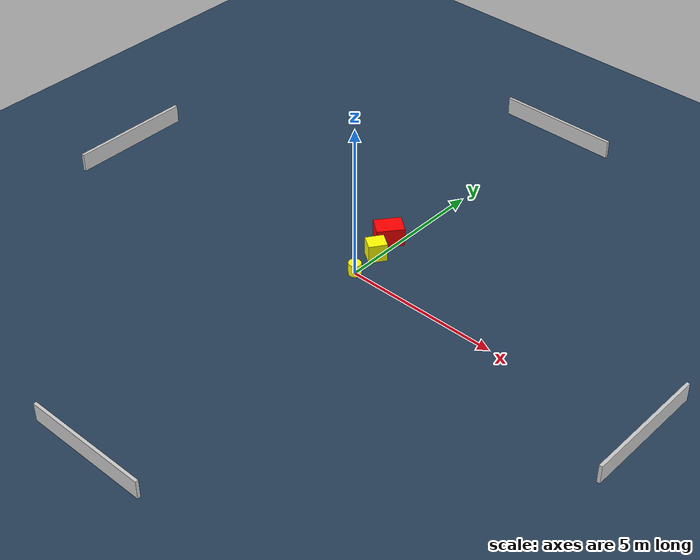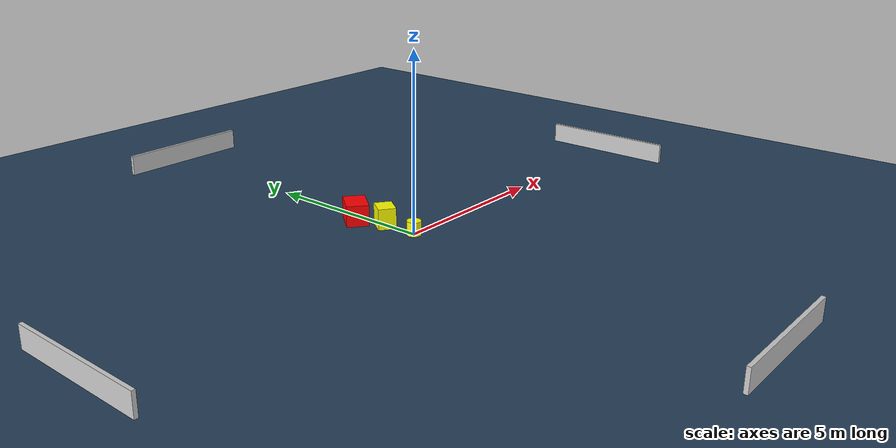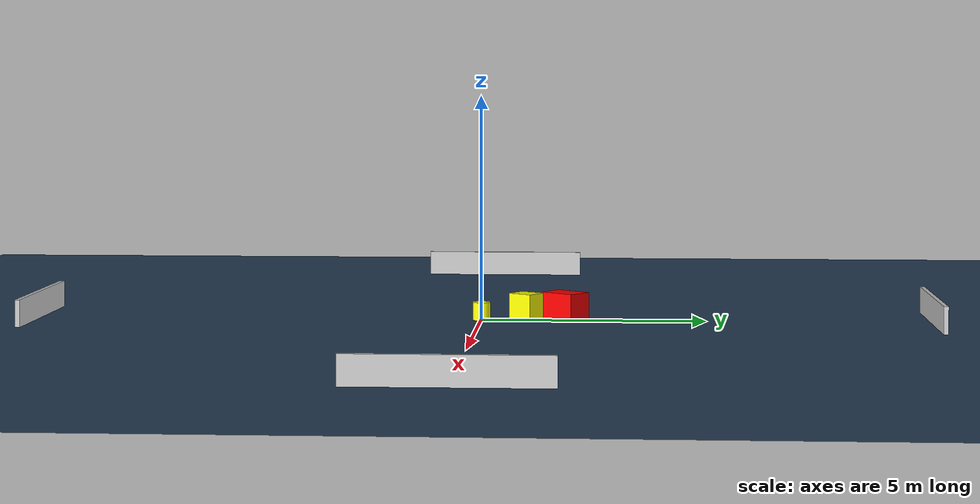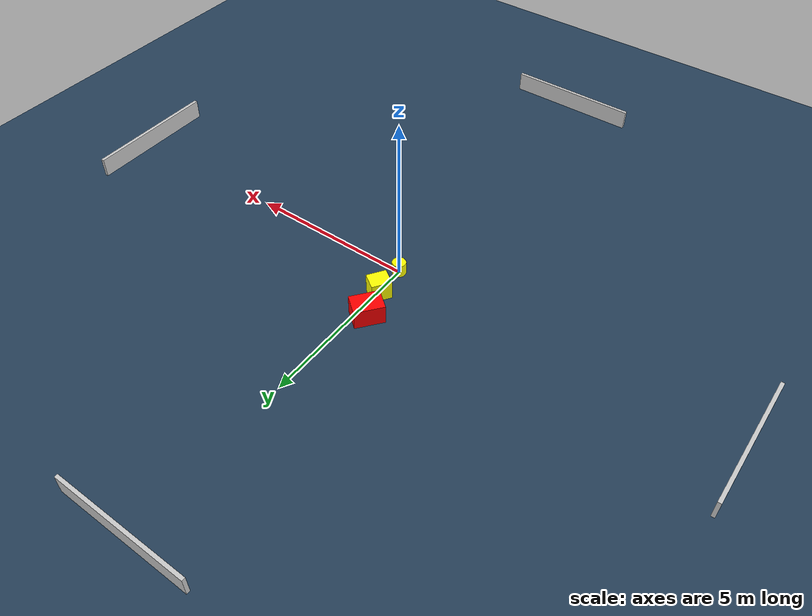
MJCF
<?xml version="1.0" ?>
<mujoco model="generated_environment">
  <option timestep="0.01" integrator="RK4" cone="elliptic"/>
  <default>
    <geom density="1"/>
  </default>
  <asset>
    <texture builtin="gradient" height="3072" name="skybox" rgb1="0.3 0.5 0.7" rgb2="0 0 0" type="skybox" width="512"/>
    <texture builtin="checker" height="300" name="groundplane" rgb1="0.2 0.3 0.4" rgb2="0.1 0.2 0.3" type="2d" width="300"/>
    <material name="groundplane" reflectance="0.2" texrepeat="5 5" texture="groundplane"/>
  </asset>
  <worldbody>
    <light dir="0 0 -1" directional="true" pos="0 0 1.5"/>
    <geom condim="3" friction="0.5 0.005 0.001" material="groundplane" name="floor" pos="0 0 0" size="0 0 0.05" type="plane"/>
    <body name="walls">
      <geom name="wall_1" condim="4" pos="-10.0 0.0 0.3" rgba="0.800000011920929 0.800000011920929 0.800000011920929 1.0" size="0.05 2.0 0.3" type="box"/>
      <geom name="wall_2" condim="4" pos="10.0 0.0 0.3" rgba="0.800000011920929 0.800000011920929 0.800000011920929 1.0" size="0.05 2.0 0.3" type="box"/>
      <geom name="wall_3" condim="4" pos="0.0 -10.0 0.3" rgba="0.800000011920929 0.800000011920929 0.800000011920929 1.0" size="2.0 0.05 0.3" type="box"/>
      <geom name="wall_4" condim="4" pos="0.0 10.0 0.3" rgba="0.800000011920929 0.800000011920929 0.800000011920929 1.0" size="2.0 0.05 0.3" type="box"/>
    </body>
    <body name="robot">
      <joint name="joint_x" type="slide" pos="0 0 0" axis="1 0 0"/>
      <joint name="joint_y" type="slide" pos="0 0 0" axis="0 1 0"/>
      <geom name="robot" type="cylinder" pos="0.0 0.0 0.2" size="0.2 0.2 0.0" mass="5.0" friction="1.0 0.005 0.0001" condim="4" rgba="1.0 1.0 0.0 1.0"/>
    </body>
    <body name="obstacle_1_movable">
      <geom name="obstacle_1_movable" condim="4" pos="-0.05645117962343717 0.9964959932563607 0.3" euler="0 0 55.52984473973264" friction="0.0 0.005 0.001" rgba="1.0 1.0 0.0 1.0" size="0.2901471934654579 0.24940071793327906 0.3" type="box" mass="0.1"/>
      <joint type="free"/>
    </body>
    <body name="obstacle_2_static">
      <geom name="obstacle_2_static" condim="4" pos="-0.31093778541287004 1.8551580605140225 0.3" euler="0 0 321.67175388319595" friction="0.0 0.005 0.001" rgba="1.0 0.0 0.0 1.0" size="0.312867665709442 0.4322275465871439 0.3" type="box"/>
    </body>
  </worldbody>
  <actuator>
    <motor name="actuator_x" joint="joint_x" gear="1" ctrlrange="-1 1"/>
    <motor name="actuator_y" joint="joint_y" gear="1" ctrlrange="-1 1"/>
  </actuator>
</mujoco>
